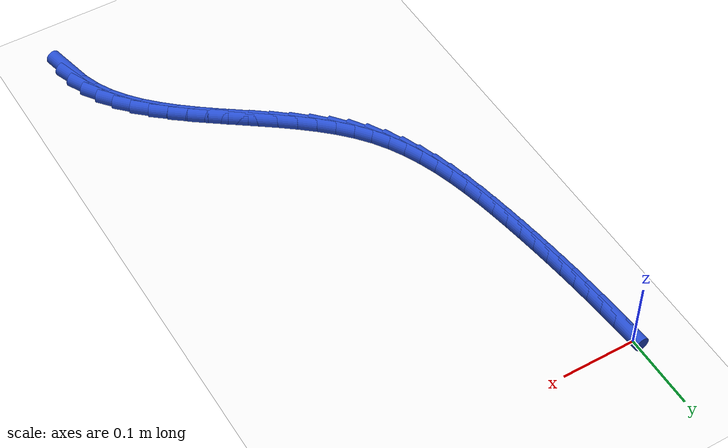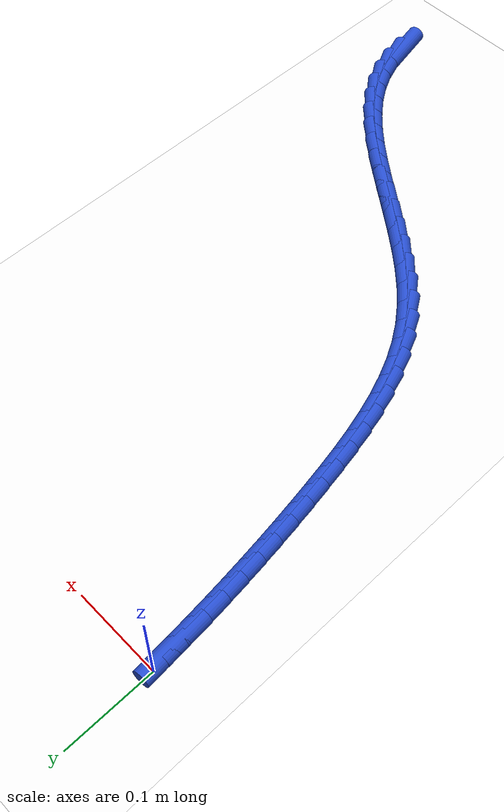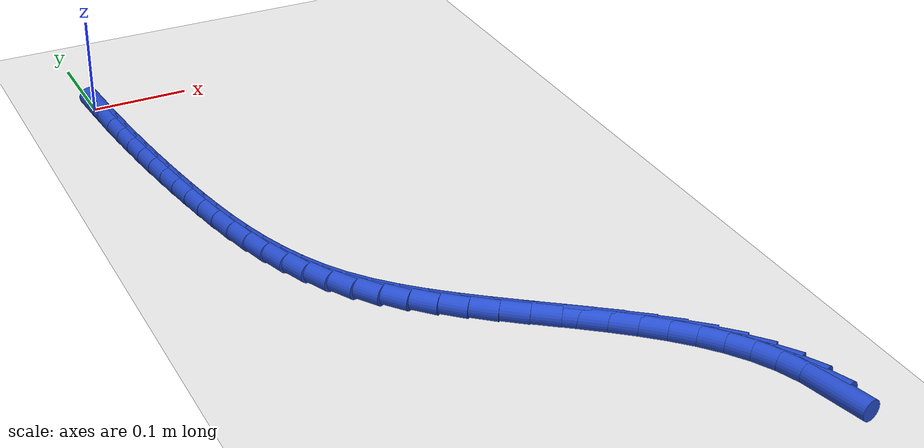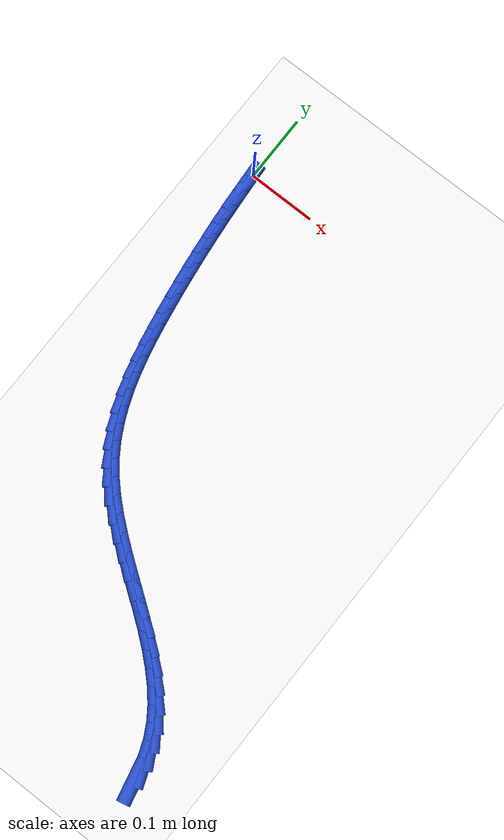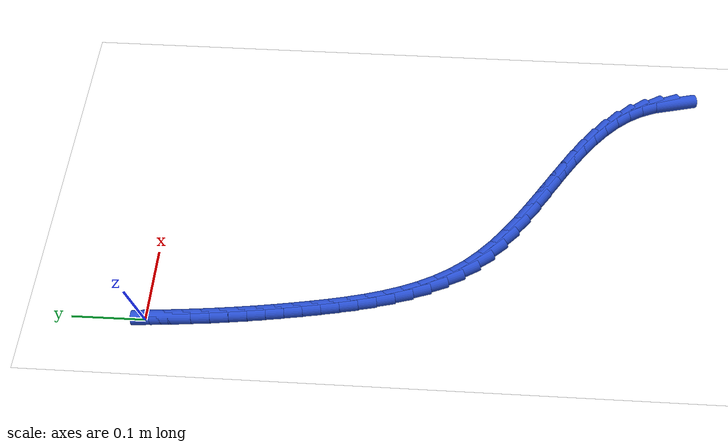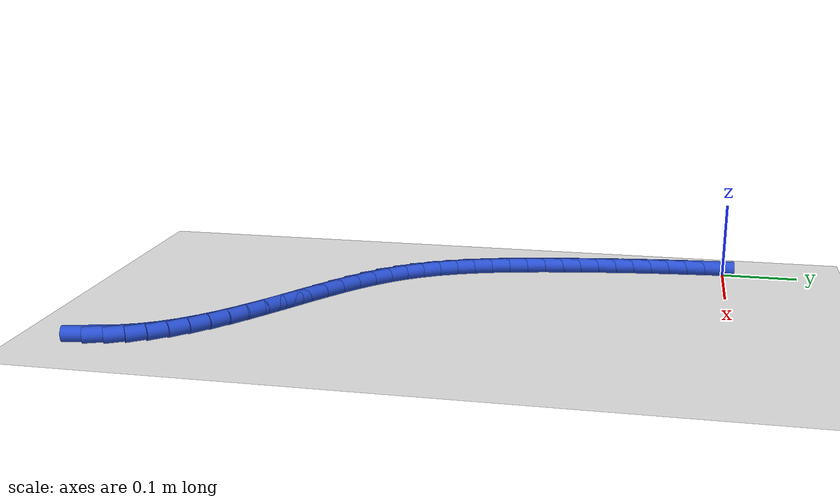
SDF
<sdf version="1.6">
 <world name="default">
  <model name="ground_plane">
   <static>1</static>
   <link name="link">
    <collision name="collision">
     <geometry><plane><normal>0 0 1</normal><size>100 100</size></plane></geometry>
     <surface><friction><ode><mu>100</mu><mu2>50</mu2></ode></friction></surface>
    </collision>
    <visual name="visual">
     <cast_shadows>0</cast_shadows>
     <geometry><plane><normal>0 0 1</normal><size>100 100</size></plane></geometry>
     <material>
      <script><uri>file://media/materials/scripts/gazebo.material</uri><name>Gazebo/WhiteGlow</name></script>
     </material>
    </visual>
   </link>
  </model>
  <model name="line">
   <link name="link_245">
    <pose>0.38377500994818403 -0.7359710983575198 0.01 0 1.57 -1.353147794348948</pose>
    <collision name="collision">
     <geometry><cylinder><radius>0.01</radius><length>0.08</length></cylinder></geometry>
    </collision>
    <visual name="visual">
     <material>
      <script><name>Gazebo/Blue</name><uri>file://media/materials/scripts/gazebo.material</uri></script>
     </material>
     <geometry><cylinder><radius>0.01</radius><length>0.08</length></cylinder></geometry>
    </visual>
   </link>
   <link name="link_246">
    <pose>0.3784855203934208 -0.7120531700665333 0.01 0 1.57 -1.2113319882462885</pose>
    <collision name="collision">
     <geometry><cylinder><radius>0.01</radius><length>0.08</length></cylinder></geometry>
    </collision>
    <visual name="visual">
     <material>
      <script><name>Gazebo/Blue</name><uri>file://media/materials/scripts/gazebo.material</uri></script>
     </material>
     <geometry><cylinder><radius>0.01</radius><length>0.08</length></cylinder></geometry>
    </visual>
   </link>
   <link name="link_247">
    <pose>0.3701230204958572 -0.6898001344145918 0.01 0 1.57 -1.0796226551489176</pose>
    <collision name="collision">
     <geometry><cylinder><radius>0.01</radius><length>0.08</length></cylinder></geometry>
    </collision>
    <visual name="visual">
     <material>
      <script><name>Gazebo/Blue</name><uri>file://media/materials/scripts/gazebo.material</uri></script>
     </material>
     <geometry><cylinder><radius>0.01</radius><length>0.08</length></cylinder></geometry>
    </visual>
   </link>
   <link name="link_248">
    <pose>0.3590119450187839 -0.6690277573027912 0.01 0 1.57 -0.9634537184867918</pose>
    <collision name="collision">
     <geometry><cylinder><radius>0.01</radius><length>0.08</length></cylinder></geometry>
    </collision>
    <visual name="visual">
     <material>
      <script><name>Gazebo/Blue</name><uri>file://media/materials/scripts/gazebo.material</uri></script>
     </material>
     <geometry><cylinder><radius>0.01</radius><length>0.08</length></cylinder></geometry>
    </visual>
   </link>
   <link name="link_249">
    <pose>0.34547672872549223 -0.6495518046322288 0.01 0 1.57 -0.8654895750083195</pose>
    <collision name="collision">
     <geometry><cylinder><radius>0.01</radius><length>0.08</length></cylinder></geometry>
    </collision>
    <visual name="visual">
     <material>
      <script><name>Gazebo/Blue</name><uri>file://media/materials/scripts/gazebo.material</uri></script>
     </material>
     <geometry><cylinder><radius>0.01</radius><length>0.08</length></cylinder></geometry>
    </visual>
   </link>
   <link name="link_250">
    <pose>0.32984180637927285 -0.6311880423040009 0.01 0 1.57 -0.7861331816070976</pose>
    <collision name="collision">
     <geometry><cylinder><radius>0.01</radius><length>0.08</length></cylinder></geometry>
    </collision>
    <visual name="visual">
     <material>
      <script><name>Gazebo/Blue</name><uri>file://media/materials/scripts/gazebo.material</uri></script>
     </material>
     <geometry><cylinder><radius>0.01</radius><length>0.08</length></cylinder></geometry>
    </visual>
   </link>
   <link name="link_251">
    <pose>0.312431612743417 -0.6137522362192046 0.01 0 1.57 -0.7244678752604171</pose>
    <collision name="collision">
     <geometry><cylinder><radius>0.01</radius><length>0.08</length></cylinder></geometry>
    </collision>
    <visual name="visual">
     <material>
      <script><name>Gazebo/Blue</name><uri>file://media/materials/scripts/gazebo.material</uri></script>
     </material>
     <geometry><cylinder><radius>0.01</radius><length>0.08</length></cylinder></geometry>
    </visual>
   </link>
   <link name="link_252">
    <pose>0.2935705825812149 -0.5970601522789359 0.01 0 1.57 -0.6790776477334004</pose>
    <collision name="collision">
     <geometry><cylinder><radius>0.01</radius><length>0.08</length></cylinder></geometry>
    </collision>
    <visual name="visual">
     <material>
      <script><name>Gazebo/Blue</name><uri>file://media/materials/scripts/gazebo.material</uri></script>
     </material>
     <geometry><cylinder><radius>0.01</radius><length>0.08</length></cylinder></geometry>
    </visual>
   </link>
   <link name="link_253">
    <pose>0.27358315065595873 -0.5809275563842926 0.01 0 1.57 -0.648570243746004</pose>
    <collision name="collision">
     <geometry><cylinder><radius>0.01</radius><length>0.08</length></cylinder></geometry>
    </collision>
    <visual name="visual">
     <material>
      <script><name>Gazebo/Blue</name><uri>file://media/materials/scripts/gazebo.material</uri></script>
     </material>
     <geometry><cylinder><radius>0.01</radius><length>0.08</length></cylinder></geometry>
    </visual>
   </link>
   <link name="link_254">
    <pose>0.2527937517309389 -0.5651702144363712 0.01 0 1.57 -0.6318484250014363</pose>
    <collision name="collision">
     <geometry><cylinder><radius>0.01</radius><length>0.08</length></cylinder></geometry>
    </collision>
    <visual name="visual">
     <material>
      <script><name>Gazebo/Blue</name><uri>file://media/materials/scripts/gazebo.material</uri></script>
     </material>
     <geometry><cylinder><radius>0.01</radius><length>0.08</length></cylinder></geometry>
    </visual>
   </link>
   <link name="link_255">
    <pose>0.23152682056944648 -0.5496038923362678 0.01 0 1.57 -0.6282260805629792</pose>
    <collision name="collision">
     <geometry><cylinder><radius>0.01</radius><length>0.08</length></cylinder></geometry>
    </collision>
    <visual name="visual">
     <material>
      <script><name>Gazebo/Blue</name><uri>file://media/materials/scripts/gazebo.material</uri></script>
     </material>
     <geometry><cylinder><radius>0.01</radius><length>0.08</length></cylinder></geometry>
    </visual>
   </link>
   <link name="link_256">
    <pose>0.21010679193477233 -0.5340443559850797 0.01 0 1.57 -0.6374641117859502</pose>
    <collision name="collision">
     <geometry><cylinder><radius>0.01</radius><length>0.08</length></cylinder></geometry>
    </collision>
    <visual name="visual">
     <material>
      <script><name>Gazebo/Blue</name><uri>file://media/materials/scripts/gazebo.material</uri></script>
     </material>
     <geometry><cylinder><radius>0.01</radius><length>0.08</length></cylinder></geometry>
    </visual>
   </link>
   <link name="link_257">
    <pose>0.18885810059020755 -0.5183073712839034 0.01 0 1.57 -0.6597661314756719</pose>
    <collision name="collision">
     <geometry><cylinder><radius>0.01</radius><length>0.08</length></cylinder></geometry>
    </collision>
    <visual name="visual">
     <material>
      <script><name>Gazebo/Blue</name><uri>file://media/materials/scripts/gazebo.material</uri></script>
     </material>
     <geometry><cylinder><radius>0.01</radius><length>0.08</length></cylinder></geometry>
    </visual>
   </link>
   <link name="link_258">
    <pose>0.16810518129904298 -0.5022087041338356 0.01 0 1.57 -0.6957438010817992</pose>
    <collision name="collision">
     <geometry><cylinder><radius>0.01</radius><length>0.08</length></cylinder></geometry>
    </collision>
    <visual name="visual">
     <material>
      <script><name>Gazebo/Blue</name><uri>file://media/materials/scripts/gazebo.material</uri></script>
     </material>
     <geometry><cylinder><radius>0.01</radius><length>0.08</length></cylinder></geometry>
    </visual>
   </link>
   <link name="link_259">
    <pose>0.1481724688245697 -0.4855641204359732 0.01 0 1.57 -0.7463354413785195</pose>
    <collision name="collision">
     <geometry><cylinder><radius>0.01</radius><length>0.08</length></cylinder></geometry>
    </collision>
    <visual name="visual">
     <material>
      <script><name>Gazebo/Blue</name><uri>file://media/materials/scripts/gazebo.material</uri></script>
     </material>
     <geometry><cylinder><radius>0.01</radius><length>0.08</length></cylinder></geometry>
    </visual>
   </link>
   <link name="link_260">
    <pose>0.12938439793007867 -0.468189386091413 0.01 0 1.57 -0.8126359055253861</pose>
    <collision name="collision">
     <geometry><cylinder><radius>0.01</radius><length>0.08</length></cylinder></geometry>
    </collision>
    <visual name="visual">
     <material>
      <script><name>Gazebo/Blue</name><uri>file://media/materials/scripts/gazebo.material</uri></script>
     </material>
     <geometry><cylinder><radius>0.01</radius><length>0.08</length></cylinder></geometry>
    </visual>
   </link>
   <link name="link_261">
    <pose>0.1120654033788603 -0.44990026700125063 0.01 0 1.57 -0.8955543974737263</pose>
    <collision name="collision">
     <geometry><cylinder><radius>0.01</radius><length>0.08</length></cylinder></geometry>
    </collision>
    <visual name="visual">
     <material>
      <script><name>Gazebo/Blue</name><uri>file://media/materials/scripts/gazebo.material</uri></script>
     </material>
     <geometry><cylinder><radius>0.01</radius><length>0.08</length></cylinder></geometry>
    </visual>
   </link>
   <link name="link_262">
    <pose>0.09653950112139945 -0.4305128085409812 0.01 0 1.57 -0.9886925177953347</pose>
    <collision name="collision">
     <geometry><cylinder><radius>0.01</radius><length>0.08</length></cylinder></geometry>
    </collision>
    <visual name="visual">
     <material>
      <script><name>Gazebo/Blue</name><uri>file://media/materials/scripts/gazebo.material</uri></script>
     </material>
     <geometry><cylinder><radius>0.01</radius><length>0.08</length></cylinder></geometry>
    </visual>
   </link>
   <link name="link_263">
    <pose>0.08299478992737637 -0.40993375381900704 0.01 0 1.57 -1.0750005354119831</pose>
    <collision name="collision">
     <geometry><cylinder><radius>0.01</radius><length>0.08</length></cylinder></geometry>
    </collision>
    <visual name="visual">
     <material>
      <script><name>Gazebo/Blue</name><uri>file://media/materials/scripts/gazebo.material</uri></script>
     </material>
     <geometry><cylinder><radius>0.01</radius><length>0.08</length></cylinder></geometry>
    </visual>
   </link>
   <link name="link_264">
    <pose>0.07128885172883141 -0.3882904003113629 0.01 0 1.57 -1.1511743461608486</pose>
    <collision name="collision">
     <geometry><cylinder><radius>0.01</radius><length>0.08</length></cylinder></geometry>
    </collision>
    <visual name="visual">
     <material>
      <script><name>Gazebo/Blue</name><uri>file://media/materials/scripts/gazebo.material</uri></script>
     </material>
     <geometry><cylinder><radius>0.01</radius><length>0.08</length></cylinder></geometry>
    </visual>
   </link>
   <link name="link_265">
    <pose>0.06122999118477139 -0.36574292829022254 0.01 0 1.57 -1.2169581915878922</pose>
    <collision name="collision">
     <geometry><cylinder><radius>0.01</radius><length>0.08</length></cylinder></geometry>
    </collision>
    <visual name="visual">
     <material>
      <script><name>Gazebo/Blue</name><uri>file://media/materials/scripts/gazebo.material</uri></script>
     </material>
     <geometry><cylinder><radius>0.01</radius><length>0.08</length></cylinder></geometry>
    </visual>
   </link>
   <link name="link_266">
    <pose>0.05262651295420307 -0.3424515180277594 0.01 0 1.57 -1.2725428401526107</pose>
    <collision name="collision">
     <geometry><cylinder><radius>0.01</radius><length>0.08</length></cylinder></geometry>
    </collision>
    <visual name="visual">
     <material>
      <script><name>Gazebo/Blue</name><uri>file://media/materials/scripts/gazebo.material</uri></script>
     </material>
     <geometry><cylinder><radius>0.01</radius><length>0.08</length></cylinder></geometry>
    </visual>
   </link>
   <link name="link_267">
    <pose>0.04528672169613321 -0.3185763497961473 0.01 0 1.57 -1.3183518078234246</pose>
    <collision name="collision">
     <geometry><cylinder><radius>0.01</radius><length>0.08</length></cylinder></geometry>
    </collision>
    <visual name="visual">
     <material>
      <script><name>Gazebo/Blue</name><uri>file://media/materials/scripts/gazebo.material</uri></script>
     </material>
     <geometry><cylinder><radius>0.01</radius><length>0.08</length></cylinder></geometry>
    </visual>
   </link>
   <link name="link_268">
    <pose>0.03901892206956859 -0.29427760386755963 0.01 0 1.57 -1.3548739766134958</pose>
    <collision name="collision">
     <geometry><cylinder><radius>0.01</radius><length>0.08</length></cylinder></geometry>
    </collision>
    <visual name="visual">
     <material>
      <script><name>Gazebo/Blue</name><uri>file://media/materials/scripts/gazebo.material</uri></script>
     </material>
     <geometry><cylinder><radius>0.01</radius><length>0.08</length></cylinder></geometry>
    </visual>
   </link>
   <link name="link_269">
    <pose>0.033631418733515966 -0.26971546051417017 0.01 0 1.57 -1.3825459298871796</pose>
    <collision name="collision">
     <geometry><cylinder><radius>0.01</radius><length>0.08</length></cylinder></geometry>
    </collision>
    <visual name="visual">
     <material>
      <script><name>Gazebo/Blue</name><uri>file://media/materials/scripts/gazebo.material</uri></script>
     </material>
     <geometry><cylinder><radius>0.01</radius><length>0.08</length></cylinder></geometry>
    </visual>
   </link>
   <link name="link_270">
    <pose>0.028932516346981997 -0.24505010000815183 0.01 0 1.57 -1.4016737369504346</pose>
    <collision name="collision">
     <geometry><cylinder><radius>0.01</radius><length>0.08</length></cylinder></geometry>
    </collision>
    <visual name="visual">
     <material>
      <script><name>Gazebo/Blue</name><uri>file://media/materials/scripts/gazebo.material</uri></script>
     </material>
     <geometry><cylinder><radius>0.01</radius><length>0.08</length></cylinder></geometry>
    </visual>
   </link>
   <link name="link_271">
    <pose>0.02473053771520536 -0.22044167992779157 0.01 0 1.57 -1.414195068544639</pose>
    <collision name="collision">
     <geometry><cylinder><radius>0.01</radius><length>0.08</length></cylinder></geometry>
    </collision>
    <visual name="visual">
     <material>
      <script><name>Gazebo/Blue</name><uri>file://media/materials/scripts/gazebo.material</uri></script>
     </material>
     <geometry><cylinder><radius>0.01</radius><length>0.08</length></cylinder></geometry>
    </visual>
   </link>
   <link name="link_272">
    <pose>0.020871791045634407 -0.19600285286614974 0.01 0 1.57 -1.4257096336987012</pose>
    <collision name="collision">
     <geometry><cylinder><radius>0.01</radius><length>0.08</length></cylinder></geometry>
    </collision>
    <visual name="visual">
     <material>
      <script><name>Gazebo/Blue</name><uri>file://media/materials/scripts/gazebo.material</uri></script>
     </material>
     <geometry><cylinder><radius>0.01</radius><length>0.08</length></cylinder></geometry>
    </visual>
   </link>
   <link name="link_273">
    <pose>0.017320622331206317 -0.17169865199068396 0.01 0 1.57 -1.43721915867404</pose>
    <collision name="collision">
     <geometry><cylinder><radius>0.01</radius><length>0.08</length></cylinder></geometry>
    </collision>
    <visual name="visual">
     <material>
      <script><name>Gazebo/Blue</name><uri>file://media/materials/scripts/gazebo.material</uri></script>
     </material>
     <geometry><cylinder><radius>0.01</radius><length>0.08</length></cylinder></geometry>
    </visual>
   </link>
   <link name="link_274">
    <pose>0.014064238428180501 -0.14746552040764005 0.01 0 1.57 -1.4486289633391245</pose>
    <collision name="collision">
     <geometry><cylinder><radius>0.01</radius><length>0.08</length></cylinder></geometry>
    </collision>
    <visual name="visual">
     <material>
      <script><name>Gazebo/Blue</name><uri>file://media/materials/scripts/gazebo.material</uri></script>
     </material>
     <geometry><cylinder><radius>0.01</radius><length>0.08</length></cylinder></geometry>
    </visual>
   </link>
   <link name="link_275">
    <pose>0.011089846192816366 -0.12323990122326378 0.01 0 1.57 -1.4598449469129278</pose>
    <collision name="collision">
     <geometry><cylinder><radius>0.01</radius><length>0.08</length></cylinder></geometry>
    </collision>
    <visual name="visual">
     <material>
      <script><name>Gazebo/Blue</name><uri>file://media/materials/scripts/gazebo.material</uri></script>
     </material>
     <geometry><cylinder><radius>0.01</radius><length>0.08</length></cylinder></geometry>
    </visual>
   </link>
   <link name="link_276">
    <pose>0.00838465248137331 -0.098958237543801 0.01 0 1.57 -1.470776226867972</pose>
    <collision name="collision">
     <geometry><cylinder><radius>0.01</radius><length>0.08</length></cylinder></geometry>
    </collision>
    <visual name="visual">
     <material>
      <script><name>Gazebo/Blue</name><uri>file://media/materials/scripts/gazebo.material</uri></script>
     </material>
     <geometry><cylinder><radius>0.01</radius><length>0.08</length></cylinder></geometry>
    </visual>
   </link>
   <link name="link_277">
    <pose>0.005935864150110748 -0.0745569724754975 0.01 0 1.57 -1.481337633689519</pose>
    <collision name="collision">
     <geometry><cylinder><radius>0.01</radius><length>0.08</length></cylinder></geometry>
    </collision>
    <visual name="visual">
     <material>
      <script><name>Gazebo/Blue</name><uri>file://media/materials/scripts/gazebo.material</uri></script>
     </material>
     <geometry><cylinder><radius>0.01</radius><length>0.08</length></cylinder></geometry>
    </visual>
   </link>
   <link name="link_278">
    <pose>0.0037306880552880825 -0.04997254912459912 0.01 0 1.57 -1.491451916208326</pose>
    <collision name="collision">
     <geometry><cylinder><radius>0.01</radius><length>0.08</length></cylinder></geometry>
    </collision>
    <visual name="visual">
     <material>
      <script><name>Gazebo/Blue</name><uri>file://media/materials/scripts/gazebo.material</uri></script>
     </material>
     <geometry><cylinder><radius>0.01</radius><length>0.08</length></cylinder></geometry>
    </visual>
   </link>
   <link name="link_279">
    <pose>0.001756331053164659 -0.02514141059735085 0.01 0 1.57 -1.5010515394837438</pose>
    <collision name="collision">
     <geometry><cylinder><radius>0.01</radius><length>0.08</length></cylinder></geometry>
    </collision>
    <visual name="visual">
     <material>
      <script><name>Gazebo/Blue</name><uri>file://media/materials/scripts/gazebo.material</uri></script>
     </material>
     <geometry><cylinder><radius>0.01</radius><length>0.08</length></cylinder></geometry>
    </visual>
   </link>
  </model>
 </world>
</sdf>
